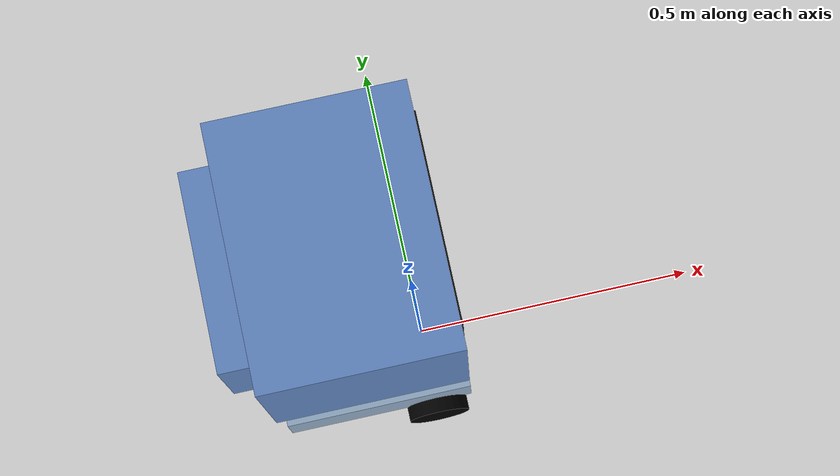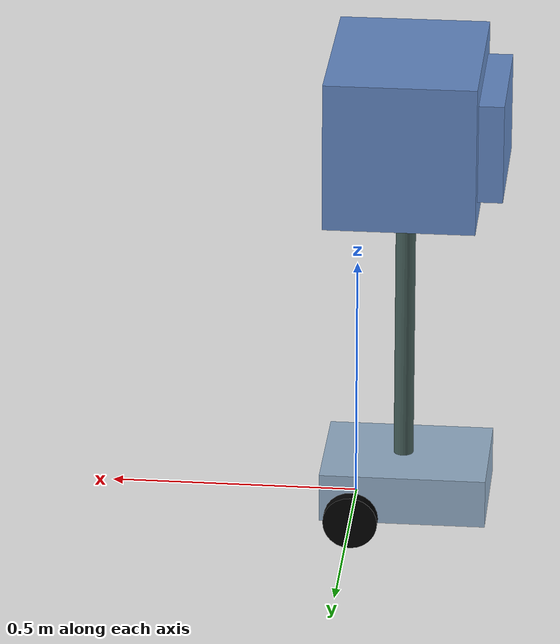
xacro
<?xml version="1.0" ?>
<robot name='robot' xmlns:xacro="http://ros.org/wiki/xacro">

    <xacro:include filename="$(find robot_description)/urdf/gazebo.urdf.xacro" />
    <!--xacro:include filename="$(find robot_description)/urdf/lidar.urdf.xacro" /-->
    <!--xacro:include filename="$(find robot_description)/urdf/depth.urdf.xacro" /-->

    <xacro:property name="chassis_length" value="0.335"/>
    <xacro:property name="chassis_width" value="0.265"/>
    <xacro:property name="chassis_height" value="0.1"/>
    <xacro:property name="rod_radius" value="0.02"/>
    <xacro:property name="rod_height" value="0.8"/>
    <xacro:property name="screen_x" value="0.3"/>
    <xacro:property name="screen_y" value="0.4"/>
    <xacro:property name="screen_z" value="0.3"/>
    <xacro:property name="screen_back_x" value="0.1"/>
    <xacro:property name="screen_back_y" value="${screen_y - 0.1}"/>
    <xacro:property name="screen_back_z" value="${screen_z - 0.1}"/>
    <xacro:property name="screen_face_x" value="0.01"/>
    <xacro:property name="screen_face_y" value="${screen_y * 0.8}"/>
    <xacro:property name="screen_face_z" value="${screen_z * 0.8}"/>
    <xacro:property name="screen_face_line_thickness" value="${0.002}"/>
    <xacro:property name="wheel_radius" value="0.055"/>
    <xacro:property name="wheel_thickness" value="0.026"/>
    <xacro:property name="wheel_mass" value="0.05"/>
    <xacro:property name="wheel_offset_x" value="0.27"/>
    <xacro:property name="wheel_offset_y" value="0.1485"/>
    <xacro:property name="wheel_offset_z" value="0.01"/>
    <xacro:property name="caster_wheel_radius" value="0.01"/>
    <xacro:property name="caster_wheel_mass" value="0.01"/>
    <xacro:property name="caster_wheel_offset_x" value="0.075"/>
    <xacro:property name="caster_wheel_offset_z" value="${wheel_offset_z - wheel_radius + caster_wheel_radius}"/>
    <xacro:property name="mass" value="1.0"/>

    <material name="white">
        <color rgba="1 1 1 1" />
    </material>

    <material name="blue-gray_base">
        <color rgba="0.576 0.682 0.784 1"/>
    </material>

    <material name="gray__rod">
        <color rgba="0.263 0.357 0.341 1"/>
    </material>

    <material name="blue_screen">
        <color rgba="0.388 0.537 0.773 1"/>
    </material>

    <material name="green_screen_face_line">
        <color rgba="0.51 0.698 0.188 1"/>
    </material>

    <material name="blue">
        <color rgba="0.2 0.2 1 1"/>
    </material>

    <material name="black">
        <color rgba="0 0 0 1"/>
    </material>

    <material name="red">
        <color rgba="1 0 0 1"/>
    </material>

    <link name="base_link">
    </link>

    <link name="base_footprint">
    </link>

    <joint name="base_footprint_joint" type="fixed">
        <parent link="base_link"/>
        <child link="base_footprint"/>
        <origin xyz="0 0 -0.138" rpy="0 0 0"/>
    </joint>

    <joint name="chassis_joint" type="fixed">
        <parent link="base_link"/>
        <child link="chassis"/>
        <origin xyz="${-wheel_offset_x} 0 ${-wheel_offset_z}"/>
    </joint>

    <link name='chassis'>

    <inertial>
        <origin xyz="${chassis_length/2} 0 ${chassis_height/2}" rpy="0 0 0"/>
        <mass value="${mass}" />
        <inertia ixx="${(1/12) * mass * (chassis_width*chassis_width+chassis_height*chassis_height)}" ixy="0.0" ixz="0.0"
                 iyy="${(1/12) * mass * (chassis_length*chassis_length+chassis_height*chassis_height)}" iyz="0.0"
                 izz="${(1/12) * mass * (chassis_length*chassis_length+chassis_width*chassis_width)}" />
    </inertial>
    <visual>
        <origin xyz="${chassis_length/2} 0 ${chassis_height/2}"/>
        <geometry>
            <box size="${chassis_length} ${chassis_width} ${chassis_height}"/>
        </geometry>
        <material name="blue-gray_base"/>
    </visual>
    <collision>
        <origin xyz="${chassis_length/2} 0 ${chassis_height/2}"/>
        <geometry>
            <box size="${chassis_length} ${chassis_width} ${chassis_height}"/>
        </geometry>
    </collision>
    </link>

    <gazebo reference="chassis">
        <material>Gazebo/Gray</material>
    </gazebo>

    <joint name="left_wheel_joint" type="continuous">
        <parent link="base_link"/>
        <child link="left_wheel"/>
        <origin xyz="0 ${wheel_offset_y} 0" rpy="-${pi/2} 0 0" />
        <axis xyz="0 0 1"/>
    </joint>

    <joint name="rod_joint" type="fixed">
        <parent link="base_link"/>
        <child link="rod"/>
        <origin xyz="${-chassis_length/3.5} 0 ${rod_height/2}" rpy="0 0 0" />
    </joint>

    <link name="rod">
        <visual>
            <geometry>
                <cylinder radius="${rod_radius}" length="${rod_height}"/>
            </geometry>
            <material name="gray__rod"/>
        </visual>
        <collision>
            <geometry>
                <cylinder radius="${rod_radius}" length="${rod_height}"/>
            </geometry>
        </collision>
    </link>

    <joint name="screen_joint" type="continuous">
        <parent link="rod"/>
        <child link="screen"/>
        <origin xyz="0 0 ${rod_height/2}" rpy="0 0 0" />
        <axis xyz="0 0 -1"/>
    </joint>

    <link name="screen">
    <inertial>
        <origin xyz="0 0 0" rpy="0 0 0"/>
        <mass value="${mass}" />
        <inertia ixx="${(1/12) * mass * (chassis_width*chassis_width+chassis_height*chassis_height)}" ixy="0.0" ixz="0.0"
                 iyy="${(1/12) * mass * (chassis_length*chassis_length+chassis_height*chassis_height)}" iyz="0.0"
                 izz="${(1/12) * mass * (chassis_length*chassis_length+chassis_width*chassis_width)}" />
    </inertial>
        <visual>
            <geometry>
                <box size="${screen_x} ${screen_y} ${screen_z}"/>
            </geometry>
            <material name="blue_screen"/>
        </visual>
        <collision>
            <geometry>
                <cylinder radius="${rod_radius}" length="${rod_height}"/>
            </geometry>
        </collision>
    </link>

    <joint name="screen_back_joint" type="fixed">
        <parent link="screen"/>
        <child link="screen_back"/>
        <origin xyz="${-screen_x/2} 0 0" rpy="0 0 0" />
    </joint>

    <link name="screen_back">
        <visual>
            <geometry>
                <box size="${screen_back_x} ${screen_back_y} ${screen_back_z}"/>
            </geometry>
            <material name="blue_screen"/>
        </visual>
        <collision>
            <geometry>
                <cylinder radius="${rod_radius}" length="${rod_height}"/>
            </geometry>
        </collision>
    </link>

    <joint name="screen_face_joint" type="fixed">
        <parent link="screen"/>
        <child link="screen_face"/>
        <origin xyz="${screen_x/2-0.002} 0 0" rpy="0 0 0" />
    </joint>

    <link name="screen_face">
        <visual>
            <geometry>
                <box size="${screen_face_x} ${screen_face_y} ${screen_face_z}"/>
            </geometry>
            <material name="black"/>
        </visual>
        <collision>
            <geometry>
                <box size="0.01 ${screen_face_y} ${screen_face_z}"/>
            </geometry>
        </collision>
    </link>

    <joint name="screen_face_line_joint" type="fixed">
        <parent link="screen_face"/>
        <child link="screen_face_line"/>
        <origin xyz="0.0001 0 0" rpy="0 0 0" />
        <axis xyz="0 0 -1"/>
    </joint>

    <link name="screen_face_line">
        <visual>
            <geometry>
                <box size="${screen_face_x} ${screen_face_y} ${screen_face_line_thickness}"/>
            </geometry>
            <material name="green_screen_face_line"/>
        </visual>
    </link>

    <link name="left_wheel">
        <visual>
            <geometry>
                <cylinder radius="${wheel_radius}" length="${wheel_thickness}"/>
            </geometry>
            <material name="black"/>
        </visual>
        <collision>
            <geometry>
                <sphere radius="${wheel_radius}"/>
            </geometry>
        </collision>
        <inertial>
            <origin xyz="0 0 0" rpy="0 0 0"/>
            <mass value="${wheel_mass}" />
            <inertia ixx="${(1/12) * wheel_mass * (3*wheel_radius*wheel_radius + wheel_thickness*wheel_thickness)}" ixy="0.0" ixz="0.0"
                     iyy="${(1/12) * wheel_mass * (3*wheel_radius*wheel_radius + wheel_thickness*wheel_thickness)}" iyz="0.0"
                     izz="${(1/2) * wheel_mass * (wheel_radius*wheel_radius)}" />
        </inertial>
    </link>

    <gazebo reference="left_wheel">
        <material>Gazebo/Black</material>
    </gazebo>

    <joint name="right_wheel_joint" type="continuous">
        <parent link="base_link"/>
        <child link="right_wheel"/>
        <origin xyz="0 ${-wheel_offset_y} 0" rpy="${pi/2} 0 0" />
        <axis xyz="0 0 -1"/>
    </joint>

    <link name="right_wheel">
        <visual>
            <geometry>
                <cylinder radius="${wheel_radius}" length="${wheel_thickness}"/>
            </geometry>
            <material name="black"/>
        </visual>
        <collision>
            <geometry>
                <sphere radius="${wheel_radius}"/>
            </geometry>
        </collision>
        <inertial>
            <origin xyz="0 0 0" rpy="0 0 0"/>
            <mass value="${wheel_mass}" />
            <inertia ixx="${(1/12) * wheel_mass * (3*wheel_radius*wheel_radius + wheel_thickness*wheel_thickness)}" ixy="0.0" ixz="0.0"
                     iyy="${(1/12) * wheel_mass * (3*wheel_radius*wheel_radius + wheel_thickness*wheel_thickness)}" iyz="0.0"
                     izz="${(1/2) * wheel_mass * (wheel_radius*wheel_radius)}" />
        </inertial>
    </link>

    <gazebo reference="right_wheel">
        <material>Gazebo/Black</material>
    </gazebo>

    <joint name="caster_wheel_joint" type="fixed">
        <parent link="chassis"/>
        <child link="caster_wheel"/>
        <origin xyz="${caster_wheel_offset_x} 0 ${caster_wheel_offset_z}"/>
    </joint>

    <link name="caster_wheel">
        <visual>
            <geometry>
                <sphere radius="${caster_wheel_radius}"/>
            </geometry>
            <material name="white"/>
        </visual>
        <collision>
            <geometry>
                <sphere radius="${caster_wheel_radius}"/>
            </geometry>
        </collision>
        <inertial>
            <origin xyz="0 0 0" rpy="0 0 0"/>
            <mass value="${caster_wheel_mass}" />
            <inertia ixx="${(2/5) * caster_wheel_mass * (caster_wheel_radius*caster_wheel_radius)}" ixy="0.0" ixz="0.0"
                     iyy="${(2/5) * caster_wheel_mass * (caster_wheel_radius*caster_wheel_radius)}" iyz="0.0"
                     izz="${(2/5) * caster_wheel_mass * (caster_wheel_radius*caster_wheel_radius)}" />
        </inertial>
    </link>

    <gazebo reference="caster_wheel">
        <material>Gazebo/White</material>
        <mu1 value="0.001"/>
        <mu2 value="0.001"/>
    </gazebo>

</robot>
